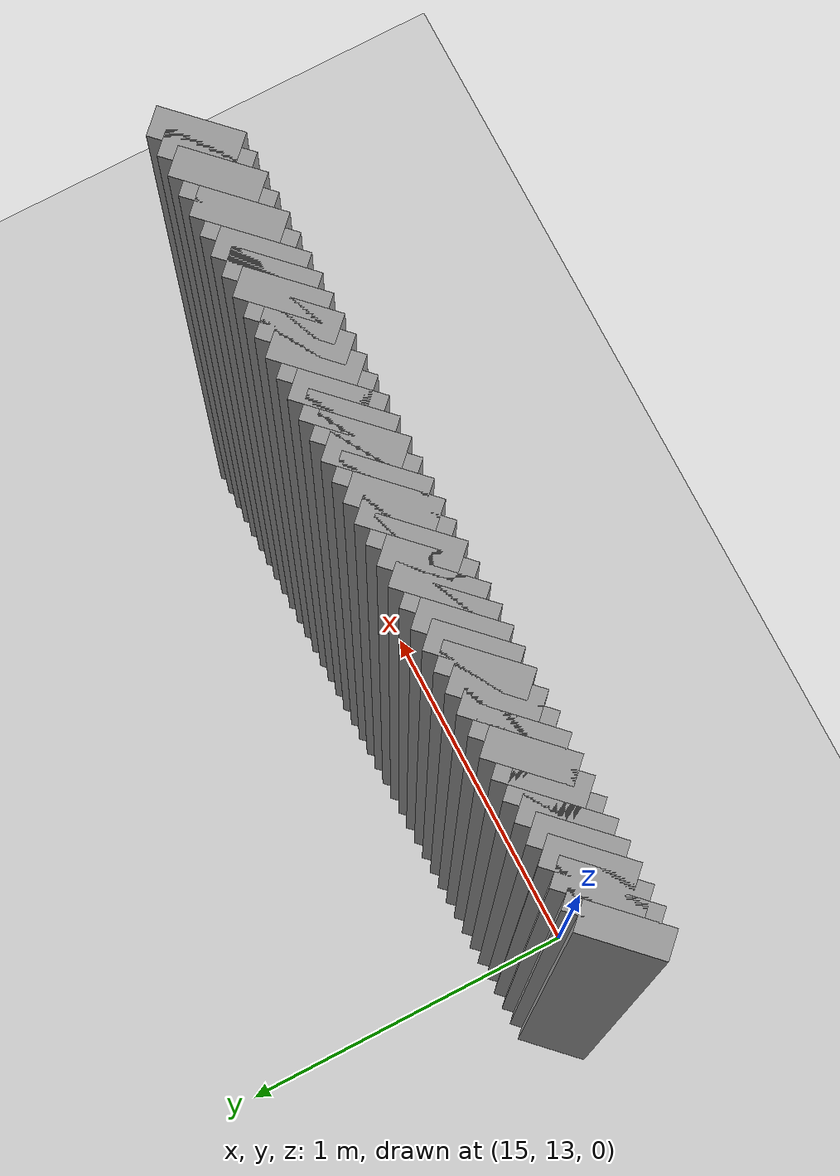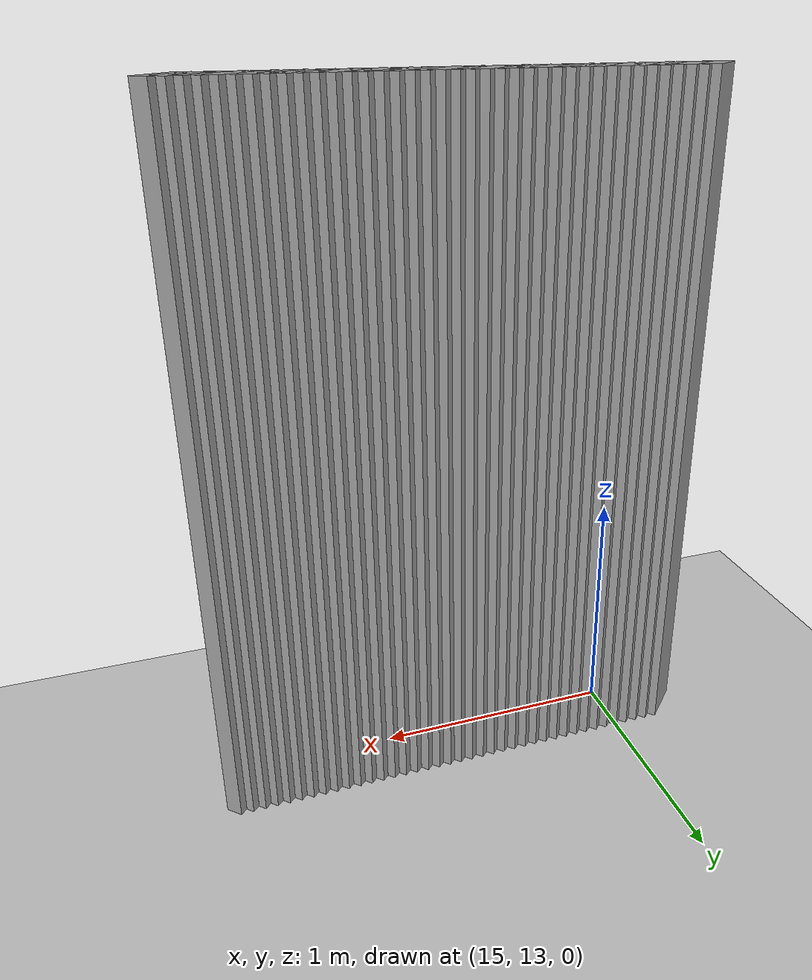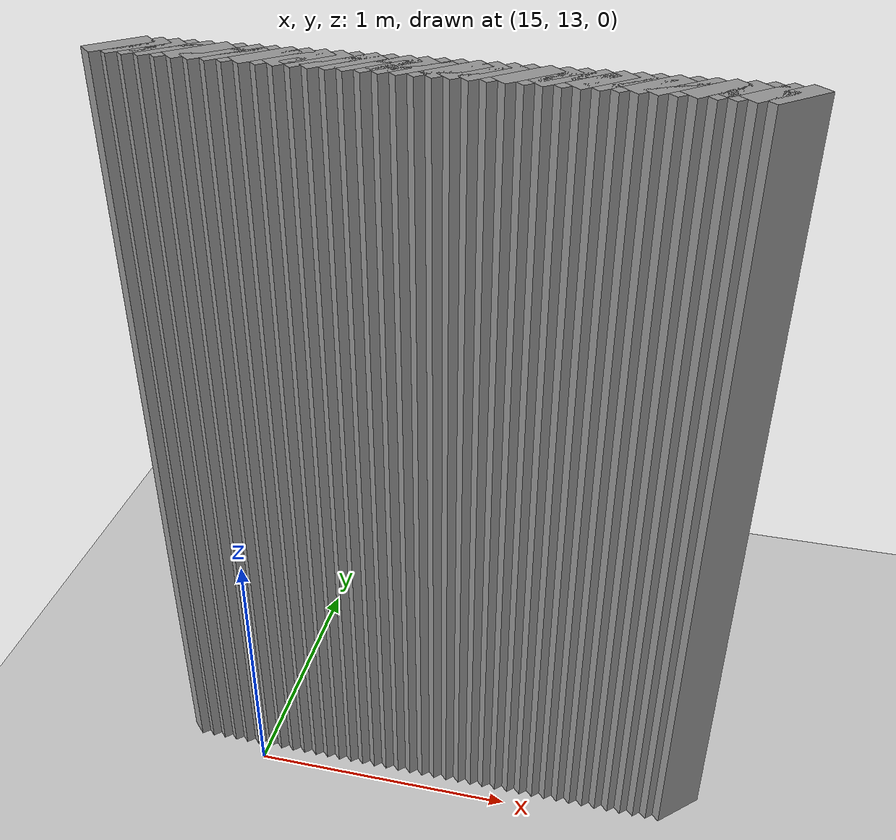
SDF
<sdf version="1.5">
 <world name="default">
  <include><uri>model://ground_plane</uri></include>
  <include><uri>model://sun</uri></include>
  <model name="grey_wall_2089">
   <static>1</static>
   <link name="link">
    <pose>14.75 13.15  1.4 0 0 -0.785398163397</pose>
    <collision name="collision"><geometry><box><size>0.0707106781187 .2  2.8</size></box></geometry></collision>
    <visual name="visual">
     <cast_shadows>0</cast_shadows>
     <geometry><box><size>0.0707106781187 .2  2.8</size></box></geometry>
     <material>
      <script>
       <uri>model://grey_wall/materials/scripts</uri>
       <uri>model://grey_wall/materials/textures</uri>
       <name>vrc/grey_wall</name>
      </script>
     </material>
    </visual>
   </link>
  </model>
  <model name="grey_wall_2090">
   <static>1</static>
   <link name="link">
    <pose>14.8 13.15  1.4 0 0 -0.785398163397</pose>
    <collision name="collision"><geometry><box><size>0.0707106781187 .2  2.8</size></box></geometry></collision>
    <visual name="visual">
     <cast_shadows>0</cast_shadows>
     <geometry><box><size>0.0707106781187 .2  2.8</size></box></geometry>
     <material>
      <script>
       <uri>model://grey_wall/materials/scripts</uri>
       <uri>model://grey_wall/materials/textures</uri>
       <name>vrc/grey_wall</name>
      </script>
     </material>
    </visual>
   </link>
  </model>
  <model name="grey_wall_2091">
   <static>1</static>
   <link name="link">
    <pose>14.85 13.15  1.4 0 0 -0.785398163397</pose>
    <collision name="collision"><geometry><box><size>0.0707106781187 .2  2.8</size></box></geometry></collision>
    <visual name="visual">
     <cast_shadows>0</cast_shadows>
     <geometry><box><size>0.0707106781187 .2  2.8</size></box></geometry>
     <material>
      <script>
       <uri>model://grey_wall/materials/scripts</uri>
       <uri>model://grey_wall/materials/textures</uri>
       <name>vrc/grey_wall</name>
      </script>
     </material>
    </visual>
   </link>
  </model>
  <model name="grey_wall_2092">
   <static>1</static>
   <link name="link">
    <pose>14.9 13.15  1.4 0 0 -0.785398163397</pose>
    <collision name="collision"><geometry><box><size>0.0707106781187 .2  2.8</size></box></geometry></collision>
    <visual name="visual">
     <cast_shadows>0</cast_shadows>
     <geometry><box><size>0.0707106781187 .2  2.8</size></box></geometry>
     <material>
      <script>
       <uri>model://grey_wall/materials/scripts</uri>
       <uri>model://grey_wall/materials/textures</uri>
       <name>vrc/grey_wall</name>
      </script>
     </material>
    </visual>
   </link>
  </model>
  <model name="grey_wall_2093">
   <static>1</static>
   <link name="link">
    <pose>14.95 13.15  1.4 0 0 -0.785398163397</pose>
    <collision name="collision"><geometry><box><size>0.0707106781187 .2  2.8</size></box></geometry></collision>
    <visual name="visual">
     <cast_shadows>0</cast_shadows>
     <geometry><box><size>0.0707106781187 .2  2.8</size></box></geometry>
     <material>
      <script>
       <uri>model://grey_wall/materials/scripts</uri>
       <uri>model://grey_wall/materials/textures</uri>
       <name>vrc/grey_wall</name>
      </script>
     </material>
    </visual>
   </link>
  </model>
  <model name="grey_wall_2094">
   <static>1</static>
   <link name="link">
    <pose>15.0 13.15  1.4 0 0 -0.785398163397</pose>
    <collision name="collision"><geometry><box><size>0.0707106781187 .2  2.8</size></box></geometry></collision>
    <visual name="visual">
     <cast_shadows>0</cast_shadows>
     <geometry><box><size>0.0707106781187 .2  2.8</size></box></geometry>
     <material>
      <script>
       <uri>model://grey_wall/materials/scripts</uri>
       <uri>model://grey_wall/materials/textures</uri>
       <name>vrc/grey_wall</name>
      </script>
     </material>
    </visual>
   </link>
  </model>
  <model name="grey_wall_2095">
   <static>1</static>
   <link name="link">
    <pose>15.05 13.15  1.4 0 0 -0.785398163397</pose>
    <collision name="collision"><geometry><box><size>0.0707106781187 .2  2.8</size></box></geometry></collision>
    <visual name="visual">
     <cast_shadows>0</cast_shadows>
     <geometry><box><size>0.0707106781187 .2  2.8</size></box></geometry>
     <material>
      <script>
       <uri>model://grey_wall/materials/scripts</uri>
       <uri>model://grey_wall/materials/textures</uri>
       <name>vrc/grey_wall</name>
      </script>
     </material>
    </visual>
   </link>
  </model>
  <model name="grey_wall_2096">
   <static>1</static>
   <link name="link">
    <pose>15.1 13.15  1.4 0 0 -0.785398163397</pose>
    <collision name="collision"><geometry><box><size>0.0707106781187 .2  2.8</size></box></geometry></collision>
    <visual name="visual">
     <cast_shadows>0</cast_shadows>
     <geometry><box><size>0.0707106781187 .2  2.8</size></box></geometry>
     <material>
      <script>
       <uri>model://grey_wall/materials/scripts</uri>
       <uri>model://grey_wall/materials/textures</uri>
       <name>vrc/grey_wall</name>
      </script>
     </material>
    </visual>
   </link>
  </model>
  <model name="grey_wall_2097">
   <static>1</static>
   <link name="link">
    <pose>15.15 13.15  1.4 0 0 -0.785398163397</pose>
    <collision name="collision"><geometry><box><size>0.0707106781187 .2  2.8</size></box></geometry></collision>
    <visual name="visual">
     <cast_shadows>0</cast_shadows>
     <geometry><box><size>0.0707106781187 .2  2.8</size></box></geometry>
     <material>
      <script>
       <uri>model://grey_wall/materials/scripts</uri>
       <uri>model://grey_wall/materials/textures</uri>
       <name>vrc/grey_wall</name>
      </script>
     </material>
    </visual>
   </link>
  </model>
  <model name="grey_wall_2098">
   <static>1</static>
   <link name="link">
    <pose>15.2 13.15  1.4 0 0 -0.785398163397</pose>
    <collision name="collision"><geometry><box><size>0.0707106781187 .2  2.8</size></box></geometry></collision>
    <visual name="visual">
     <cast_shadows>0</cast_shadows>
     <geometry><box><size>0.0707106781187 .2  2.8</size></box></geometry>
     <material>
      <script>
       <uri>model://grey_wall/materials/scripts</uri>
       <uri>model://grey_wall/materials/textures</uri>
       <name>vrc/grey_wall</name>
      </script>
     </material>
    </visual>
   </link>
  </model>
  <model name="grey_wall_2099">
   <static>1</static>
   <link name="link">
    <pose>15.25 13.15  1.4 0 0 -0.785398163397</pose>
    <collision name="collision"><geometry><box><size>0.0707106781187 .2  2.8</size></box></geometry></collision>
    <visual name="visual">
     <cast_shadows>0</cast_shadows>
     <geometry><box><size>0.0707106781187 .2  2.8</size></box></geometry>
     <material>
      <script>
       <uri>model://grey_wall/materials/scripts</uri>
       <uri>model://grey_wall/materials/textures</uri>
       <name>vrc/grey_wall</name>
      </script>
     </material>
    </visual>
   </link>
  </model>
  <model name="grey_wall_2100">
   <static>1</static>
   <link name="link">
    <pose>15.3 13.15  1.4 0 0 -0.785398163397</pose>
    <collision name="collision"><geometry><box><size>0.0707106781187 .2  2.8</size></box></geometry></collision>
    <visual name="visual">
     <cast_shadows>0</cast_shadows>
     <geometry><box><size>0.0707106781187 .2  2.8</size></box></geometry>
     <material>
      <script>
       <uri>model://grey_wall/materials/scripts</uri>
       <uri>model://grey_wall/materials/textures</uri>
       <name>vrc/grey_wall</name>
      </script>
     </material>
    </visual>
   </link>
  </model>
  <model name="grey_wall_2101">
   <static>1</static>
   <link name="link">
    <pose>15.35 13.15  1.4 0 0 -0.785398163397</pose>
    <collision name="collision"><geometry><box><size>0.0707106781187 .2  2.8</size></box></geometry></collision>
    <visual name="visual">
     <cast_shadows>0</cast_shadows>
     <geometry><box><size>0.0707106781187 .2  2.8</size></box></geometry>
     <material>
      <script>
       <uri>model://grey_wall/materials/scripts</uri>
       <uri>model://grey_wall/materials/textures</uri>
       <name>vrc/grey_wall</name>
      </script>
     </material>
    </visual>
   </link>
  </model>
  <model name="grey_wall_2102">
   <static>1</static>
   <link name="link">
    <pose>15.4 13.15  1.4 0 0 -0.785398163397</pose>
    <collision name="collision"><geometry><box><size>0.0707106781187 .2  2.8</size></box></geometry></collision>
    <visual name="visual">
     <cast_shadows>0</cast_shadows>
     <geometry><box><size>0.0707106781187 .2  2.8</size></box></geometry>
     <material>
      <script>
       <uri>model://grey_wall/materials/scripts</uri>
       <uri>model://grey_wall/materials/textures</uri>
       <name>vrc/grey_wall</name>
      </script>
     </material>
    </visual>
   </link>
  </model>
  <model name="grey_wall_2103">
   <static>1</static>
   <link name="link">
    <pose>15.45 13.15  1.4 0 0 -0.785398163397</pose>
    <collision name="collision"><geometry><box><size>0.0707106781187 .2  2.8</size></box></geometry></collision>
    <visual name="visual">
     <cast_shadows>0</cast_shadows>
     <geometry><box><size>0.0707106781187 .2  2.8</size></box></geometry>
     <material>
      <script>
       <uri>model://grey_wall/materials/scripts</uri>
       <uri>model://grey_wall/materials/textures</uri>
       <name>vrc/grey_wall</name>
      </script>
     </material>
    </visual>
   </link>
  </model>
  <model name="grey_wall_2104">
   <static>1</static>
   <link name="link">
    <pose>15.5 13.15  1.4 0 0 -0.785398163397</pose>
    <collision name="collision"><geometry><box><size>0.0707106781187 .2  2.8</size></box></geometry></collision>
    <visual name="visual">
     <cast_shadows>0</cast_shadows>
     <geometry><box><size>0.0707106781187 .2  2.8</size></box></geometry>
     <material>
      <script>
       <uri>model://grey_wall/materials/scripts</uri>
       <uri>model://grey_wall/materials/textures</uri>
       <name>vrc/grey_wall</name>
      </script>
     </material>
    </visual>
   </link>
  </model>
  <model name="grey_wall_2105">
   <static>1</static>
   <link name="link">
    <pose>15.55 13.15  1.4 0 0 -0.785398163397</pose>
    <collision name="collision"><geometry><box><size>0.0707106781187 .2  2.8</size></box></geometry></collision>
    <visual name="visual">
     <cast_shadows>0</cast_shadows>
     <geometry><box><size>0.0707106781187 .2  2.8</size></box></geometry>
     <material>
      <script>
       <uri>model://grey_wall/materials/scripts</uri>
       <uri>model://grey_wall/materials/textures</uri>
       <name>vrc/grey_wall</name>
      </script>
     </material>
    </visual>
   </link>
  </model>
  <model name="grey_wall_2106">
   <static>1</static>
   <link name="link">
    <pose>15.6 13.15  1.4 0 0 -0.785398163397</pose>
    <collision name="collision"><geometry><box><size>0.0707106781187 .2  2.8</size></box></geometry></collision>
    <visual name="visual">
     <cast_shadows>0</cast_shadows>
     <geometry><box><size>0.0707106781187 .2  2.8</size></box></geometry>
     <material>
      <script>
       <uri>model://grey_wall/materials/scripts</uri>
       <uri>model://grey_wall/materials/textures</uri>
       <name>vrc/grey_wall</name>
      </script>
     </material>
    </visual>
   </link>
  </model>
  <model name="grey_wall_2107">
   <static>1</static>
   <link name="link">
    <pose>15.65 13.15  1.4 0 0 -0.785398163397</pose>
    <collision name="collision"><geometry><box><size>0.0707106781187 .2  2.8</size></box></geometry></collision>
    <visual name="visual">
     <cast_shadows>0</cast_shadows>
     <geometry><box><size>0.0707106781187 .2  2.8</size></box></geometry>
     <material>
      <script>
       <uri>model://grey_wall/materials/scripts</uri>
       <uri>model://grey_wall/materials/textures</uri>
       <name>vrc/grey_wall</name>
      </script>
     </material>
    </visual>
   </link>
  </model>
  <model name="grey_wall_2108">
   <static>1</static>
   <link name="link">
    <pose>15.7 13.15  1.4 0 0 -0.785398163397</pose>
    <collision name="collision"><geometry><box><size>0.0707106781187 .2  2.8</size></box></geometry></collision>
    <visual name="visual">
     <cast_shadows>0</cast_shadows>
     <geometry><box><size>0.0707106781187 .2  2.8</size></box></geometry>
     <material>
      <script>
       <uri>model://grey_wall/materials/scripts</uri>
       <uri>model://grey_wall/materials/textures</uri>
       <name>vrc/grey_wall</name>
      </script>
     </material>
    </visual>
   </link>
  </model>
  <model name="grey_wall_2109">
   <static>1</static>
   <link name="link">
    <pose>15.75 13.15  1.4 0 0 -0.785398163397</pose>
    <collision name="collision"><geometry><box><size>0.0707106781187 .2  2.8</size></box></geometry></collision>
    <visual name="visual">
     <cast_shadows>0</cast_shadows>
     <geometry><box><size>0.0707106781187 .2  2.8</size></box></geometry>
     <material>
      <script>
       <uri>model://grey_wall/materials/scripts</uri>
       <uri>model://grey_wall/materials/textures</uri>
       <name>vrc/grey_wall</name>
      </script>
     </material>
    </visual>
   </link>
  </model>
  <model name="grey_wall_2110">
   <static>1</static>
   <link name="link">
    <pose>15.8 13.15  1.4 0 0 -0.785398163397</pose>
    <collision name="collision"><geometry><box><size>0.0707106781187 .2  2.8</size></box></geometry></collision>
    <visual name="visual">
     <cast_shadows>0</cast_shadows>
     <geometry><box><size>0.0707106781187 .2  2.8</size></box></geometry>
     <material>
      <script>
       <uri>model://grey_wall/materials/scripts</uri>
       <uri>model://grey_wall/materials/textures</uri>
       <name>vrc/grey_wall</name>
      </script>
     </material>
    </visual>
   </link>
  </model>
  <model name="grey_wall_2111">
   <static>1</static>
   <link name="link">
    <pose>15.85 13.15  1.4 0 0 -0.785398163397</pose>
    <collision name="collision"><geometry><box><size>0.0707106781187 .2  2.8</size></box></geometry></collision>
    <visual name="visual">
     <cast_shadows>0</cast_shadows>
     <geometry><box><size>0.0707106781187 .2  2.8</size></box></geometry>
     <material>
      <script>
       <uri>model://grey_wall/materials/scripts</uri>
       <uri>model://grey_wall/materials/textures</uri>
       <name>vrc/grey_wall</name>
      </script>
     </material>
    </visual>
   </link>
  </model>
  <model name="grey_wall_2112">
   <static>1</static>
   <link name="link">
    <pose>15.9 13.15  1.4 0 0 -0.785398163397</pose>
    <collision name="collision"><geometry><box><size>0.0707106781187 .2  2.8</size></box></geometry></collision>
    <visual name="visual">
     <cast_shadows>0</cast_shadows>
     <geometry><box><size>0.0707106781187 .2  2.8</size></box></geometry>
     <material>
      <script>
       <uri>model://grey_wall/materials/scripts</uri>
       <uri>model://grey_wall/materials/textures</uri>
       <name>vrc/grey_wall</name>
      </script>
     </material>
    </visual>
   </link>
  </model>
  <model name="grey_wall_2113">
   <static>1</static>
   <link name="link">
    <pose>15.95 13.15  1.4 0 0 -0.785398163397</pose>
    <collision name="collision"><geometry><box><size>0.0707106781187 .2  2.8</size></box></geometry></collision>
    <visual name="visual">
     <cast_shadows>0</cast_shadows>
     <geometry><box><size>0.0707106781187 .2  2.8</size></box></geometry>
     <material>
      <script>
       <uri>model://grey_wall/materials/scripts</uri>
       <uri>model://grey_wall/materials/textures</uri>
       <name>vrc/grey_wall</name>
      </script>
     </material>
    </visual>
   </link>
  </model>
  <model name="grey_wall_2114">
   <static>1</static>
   <link name="link">
    <pose>16.0 13.15  1.4 0 0 -0.785398163397</pose>
    <collision name="collision"><geometry><box><size>0.0707106781187 .2  2.8</size></box></geometry></collision>
    <visual name="visual">
     <cast_shadows>0</cast_shadows>
     <geometry><box><size>0.0707106781187 .2  2.8</size></box></geometry>
     <material>
      <script>
       <uri>model://grey_wall/materials/scripts</uri>
       <uri>model://grey_wall/materials/textures</uri>
       <name>vrc/grey_wall</name>
      </script>
     </material>
    </visual>
   </link>
  </model>
  <model name="grey_wall_2115">
   <static>1</static>
   <link name="link">
    <pose>16.05 13.15  1.4 0 0 -0.785398163397</pose>
    <collision name="collision"><geometry><box><size>0.0707106781187 .2  2.8</size></box></geometry></collision>
    <visual name="visual">
     <cast_shadows>0</cast_shadows>
     <geometry><box><size>0.0707106781187 .2  2.8</size></box></geometry>
     <material>
      <script>
       <uri>model://grey_wall/materials/scripts</uri>
       <uri>model://grey_wall/materials/textures</uri>
       <name>vrc/grey_wall</name>
      </script>
     </material>
    </visual>
   </link>
  </model>
  <model name="grey_wall_2116">
   <static>1</static>
   <link name="link">
    <pose>16.1 13.15  1.4 0 0 -0.785398163397</pose>
    <collision name="collision"><geometry><box><size>0.0707106781187 .2  2.8</size></box></geometry></collision>
    <visual name="visual">
     <cast_shadows>0</cast_shadows>
     <geometry><box><size>0.0707106781187 .2  2.8</size></box></geometry>
     <material>
      <script>
       <uri>model://grey_wall/materials/scripts</uri>
       <uri>model://grey_wall/materials/textures</uri>
       <name>vrc/grey_wall</name>
      </script>
     </material>
    </visual>
   </link>
  </model>
  <model name="grey_wall_2117">
   <static>1</static>
   <link name="link">
    <pose>16.15 13.15  1.4 0 0 -0.785398163397</pose>
    <collision name="collision"><geometry><box><size>0.0707106781187 .2  2.8</size></box></geometry></collision>
    <visual name="visual">
     <cast_shadows>0</cast_shadows>
     <geometry><box><size>0.0707106781187 .2  2.8</size></box></geometry>
     <material>
      <script>
       <uri>model://grey_wall/materials/scripts</uri>
       <uri>model://grey_wall/materials/textures</uri>
       <name>vrc/grey_wall</name>
      </script>
     </material>
    </visual>
   </link>
  </model>
  <model name="grey_wall_2118">
   <static>1</static>
   <link name="link">
    <pose>16.2 13.15  1.4 0 0 -0.785398163397</pose>
    <collision name="collision"><geometry><box><size>0.0707106781187 .2  2.8</size></box></geometry></collision>
    <visual name="visual">
     <cast_shadows>0</cast_shadows>
     <geometry><box><size>0.0707106781187 .2  2.8</size></box></geometry>
     <material>
      <script>
       <uri>model://grey_wall/materials/scripts</uri>
       <uri>model://grey_wall/materials/textures</uri>
       <name>vrc/grey_wall</name>
      </script>
     </material>
    </visual>
   </link>
  </model>
  <model name="grey_wall_2119">
   <static>1</static>
   <link name="link">
    <pose>16.25 13.15  1.4 0 0 -0.785398163397</pose>
    <collision name="collision"><geometry><box><size>0.0707106781187 .2  2.8</size></box></geometry></collision>
    <visual name="visual">
     <cast_shadows>0</cast_shadows>
     <geometry><box><size>0.0707106781187 .2  2.8</size></box></geometry>
     <material>
      <script>
       <uri>model://grey_wall/materials/scripts</uri>
       <uri>model://grey_wall/materials/textures</uri>
       <name>vrc/grey_wall</name>
      </script>
     </material>
    </visual>
   </link>
  </model>
  <model name="grey_wall_2120">
   <static>1</static>
   <link name="link">
    <pose>16.3 13.15  1.4 0 0 -0.785398163397</pose>
    <collision name="collision"><geometry><box><size>0.0707106781187 .2  2.8</size></box></geometry></collision>
    <visual name="visual">
     <cast_shadows>0</cast_shadows>
     <geometry><box><size>0.0707106781187 .2  2.8</size></box></geometry>
     <material>
      <script>
       <uri>model://grey_wall/materials/scripts</uri>
       <uri>model://grey_wall/materials/textures</uri>
       <name>vrc/grey_wall</name>
      </script>
     </material>
    </visual>
   </link>
  </model>
  <model name="grey_wall_2121">
   <static>1</static>
   <link name="link">
    <pose>16.35 13.15  1.4 0 0 -0.785398163397</pose>
    <collision name="collision"><geometry><box><size>0.0707106781187 .2  2.8</size></box></geometry></collision>
    <visual name="visual">
     <cast_shadows>0</cast_shadows>
     <geometry><box><size>0.0707106781187 .2  2.8</size></box></geometry>
     <material>
      <script>
       <uri>model://grey_wall/materials/scripts</uri>
       <uri>model://grey_wall/materials/textures</uri>
       <name>vrc/grey_wall</name>
      </script>
     </material>
    </visual>
   </link>
  </model>
  <model name="grey_wall_2122">
   <static>1</static>
   <link name="link">
    <pose>16.4 13.15  1.4 0 0 -0.785398163397</pose>
    <collision name="collision"><geometry><box><size>0.0707106781187 .2  2.8</size></box></geometry></collision>
    <visual name="visual">
     <cast_shadows>0</cast_shadows>
     <geometry><box><size>0.0707106781187 .2  2.8</size></box></geometry>
     <material>
      <script>
       <uri>model://grey_wall/materials/scripts</uri>
       <uri>model://grey_wall/materials/textures</uri>
       <name>vrc/grey_wall</name>
      </script>
     </material>
    </visual>
   </link>
  </model>
  <model name="grey_wall_2123">
   <static>1</static>
   <link name="link">
    <pose>16.45 13.15  1.4 0 0 -0.785398163397</pose>
    <collision name="collision"><geometry><box><size>0.0707106781187 .2  2.8</size></box></geometry></collision>
    <visual name="visual">
     <cast_shadows>0</cast_shadows>
     <geometry><box><size>0.0707106781187 .2  2.8</size></box></geometry>
     <material>
      <script>
       <uri>model://grey_wall/materials/scripts</uri>
       <uri>model://grey_wall/materials/textures</uri>
       <name>vrc/grey_wall</name>
      </script>
     </material>
    </visual>
   </link>
  </model>
  <model name="grey_wall_2124">
   <static>1</static>
   <link name="link">
    <pose>16.5 13.15  1.4 0 0 -0.785398163397</pose>
    <collision name="collision"><geometry><box><size>0.0707106781187 .2  2.8</size></box></geometry></collision>
    <visual name="visual">
     <cast_shadows>0</cast_shadows>
     <geometry><box><size>0.0707106781187 .2  2.8</size></box></geometry>
     <material>
      <script>
       <uri>model://grey_wall/materials/scripts</uri>
       <uri>model://grey_wall/materials/textures</uri>
       <name>vrc/grey_wall</name>
      </script>
     </material>
    </visual>
   </link>
  </model>
  <model name="grey_wall_2125">
   <static>1</static>
   <link name="link">
    <pose>16.55 13.15  1.4 0 0 -0.785398163397</pose>
    <collision name="collision"><geometry><box><size>0.0707106781187 .2  2.8</size></box></geometry></collision>
    <visual name="visual">
     <cast_shadows>0</cast_shadows>
     <geometry><box><size>0.0707106781187 .2  2.8</size></box></geometry>
     <material>
      <script>
       <uri>model://grey_wall/materials/scripts</uri>
       <uri>model://grey_wall/materials/textures</uri>
       <name>vrc/grey_wall</name>
      </script>
     </material>
    </visual>
   </link>
  </model>
  <model name="grey_wall_2126">
   <static>1</static>
   <link name="link">
    <pose>16.6 13.15  1.4 0 0 -0.785398163397</pose>
    <collision name="collision"><geometry><box><size>0.0707106781187 .2  2.8</size></box></geometry></collision>
    <visual name="visual">
     <cast_shadows>0</cast_shadows>
     <geometry><box><size>0.0707106781187 .2  2.8</size></box></geometry>
     <material>
      <script>
       <uri>model://grey_wall/materials/scripts</uri>
       <uri>model://grey_wall/materials/textures</uri>
       <name>vrc/grey_wall</name>
      </script>
     </material>
    </visual>
   </link>
  </model>
  <model name="grey_wall_2127">
   <static>1</static>
   <link name="link">
    <pose>16.65 13.15  1.4 0 0 -0.785398163397</pose>
    <collision name="collision"><geometry><box><size>0.0707106781187 .2  2.8</size></box></geometry></collision>
    <visual name="visual">
     <cast_shadows>0</cast_shadows>
     <geometry><box><size>0.0707106781187 .2  2.8</size></box></geometry>
     <material>
      <script>
       <uri>model://grey_wall/materials/scripts</uri>
       <uri>model://grey_wall/materials/textures</uri>
       <name>vrc/grey_wall</name>
      </script>
     </material>
    </visual>
   </link>
  </model>
 </world>
</sdf>
